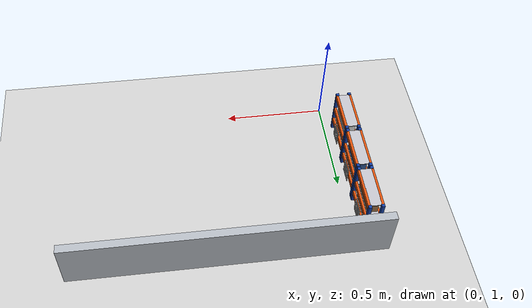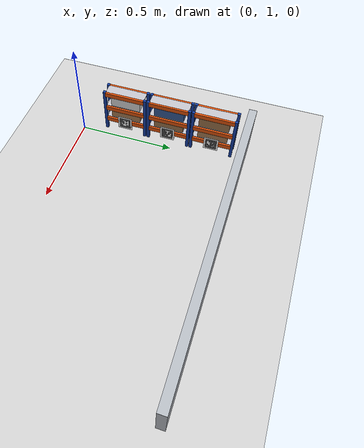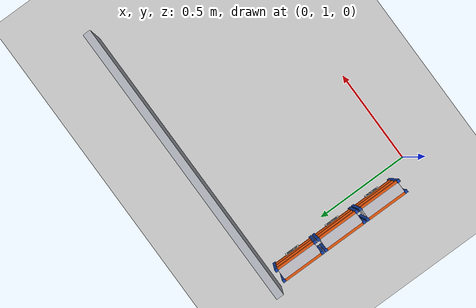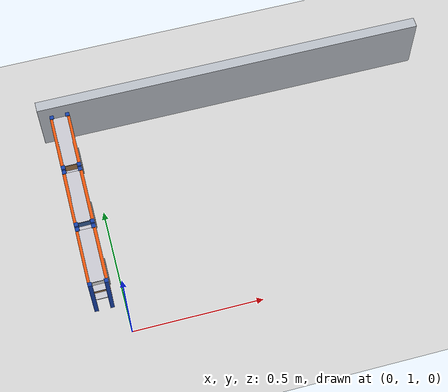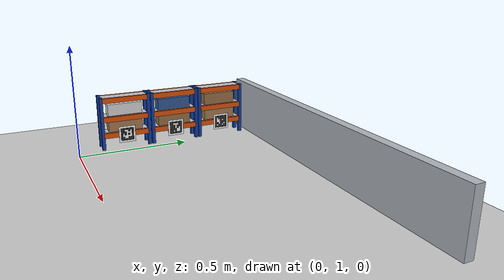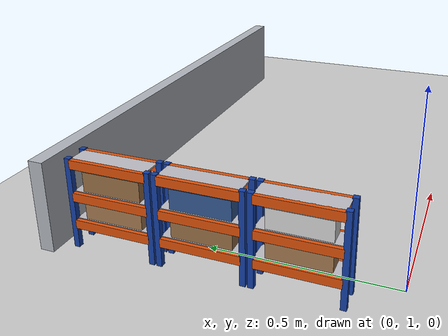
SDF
<sdf version="1.8">
 <world name="default">
  <model name="ground_plane">
   <static>true</static>
   <link name="link">
    <collision name="collision">
     <geometry><plane><normal>0 0 1</normal><size>10 10</size></plane></geometry>
    </collision>
    <visual name="visual">
     <geometry><plane><normal>0 0 1</normal><size>10 10</size></plane></geometry>
     <material><ambient>0.8 0.8 0.8 1</ambient><diffuse>0.8 0.8 0.8 1</diffuse></material>
    </visual>
   </link>
  </model>
  <model name="wall_north">
   <static>true</static>
   <pose>0.6000 1.8800 0.1250 0 0 0</pose>
   <link name="link">
    <collision name="collision"><geometry><box><size>1.5200 0.0400 0.2500</size></box></geometry></collision>
    <visual name="visual">
     <geometry><box><size>1.5200 0.0400 0.2500</size></box></geometry>
     <material>
      <ambient>0.7 0.72 0.75 1</ambient>
      <diffuse>0.7 0.72 0.75 1</diffuse>
      <specular>0.1 0.1 0.1 1</specular>
     </material>
    </visual>
   </link>
  </model>
  <model name="shelf1_costco_rack_left">
   <static>true</static>
   <pose>-0.0800 1.2300 0.1250 0 0 0</pose>
   <link name="link">
    <collision name="collision"><geometry><box><size>0.0700 0.2300 0.2500</size></box></geometry></collision>
    <visual name="post_FL">
     <pose>0.0300 -0.110 0 0 0 0</pose>
     <geometry><box><size>0.015 0.015 0.25</size></box></geometry>
     <material>
      <ambient>0.05 0.15 0.45 1</ambient>
      <diffuse>0.08 0.25 0.65 1</diffuse>
      <specular>0.3 0.3 0.4 1</specular>
     </material>
    </visual>
    <visual name="post_FR">
     <pose>0.0300 0.110 0 0 0 0</pose>
     <geometry><box><size>0.015 0.015 0.25</size></box></geometry>
     <material>
      <ambient>0.05 0.15 0.45 1</ambient>
      <diffuse>0.08 0.25 0.65 1</diffuse>
      <specular>0.3 0.3 0.4 1</specular>
     </material>
    </visual>
    <visual name="post_RL">
     <pose>-0.0300 -0.110 0 0 0 0</pose>
     <geometry><box><size>0.015 0.015 0.25</size></box></geometry>
     <material>
      <ambient>0.05 0.15 0.45 1</ambient>
      <diffuse>0.08 0.25 0.65 1</diffuse>
      <specular>0.3 0.3 0.4 1</specular>
     </material>
    </visual>
    <visual name="post_RR">
     <pose>-0.0300 0.110 0 0 0 0</pose>
     <geometry><box><size>0.015 0.015 0.25</size></box></geometry>
     <material>
      <ambient>0.05 0.15 0.45 1</ambient>
      <diffuse>0.08 0.25 0.65 1</diffuse>
      <specular>0.3 0.3 0.4 1</specular>
     </material>
    </visual>
    <visual name="t1_beam_F">
     <pose>0.0320 0 -0.057 0 0 0</pose>
     <geometry><box><size>0.012 0.21 0.024</size></box></geometry>
     <material>
      <ambient>0.6 0.2 0.02 1</ambient>
      <diffuse>0.88 0.32 0.04 1</diffuse>
      <specular>0.4 0.2 0.1 1</specular>
     </material>
    </visual>
    <visual name="t1_beam_R">
     <pose>-0.0320 0 -0.057 0 0 0</pose>
     <geometry><box><size>0.012 0.21 0.024</size></box></geometry>
     <material><ambient>0.6 0.2 0.02 1</ambient><diffuse>0.88 0.32 0.04 1</diffuse></material>
    </visual>
    <visual name="t1_deck">
     <pose>0 0 -0.045 0 0 0</pose>
     <geometry><box><size>0.055 0.21 0.004</size></box></geometry>
     <material><ambient>0.65 0.65 0.68 1</ambient><diffuse>0.75 0.75 0.78 1</diffuse></material>
    </visual>
    <visual name="t1_box">
     <pose>0 0 -0.016 0 0 0</pose>
     <geometry><box><size>0.048 0.16 0.054</size></box></geometry>
     <material><ambient>0.55 0.40 0.25 1</ambient><diffuse>0.65 0.48 0.32 1</diffuse></material>
    </visual>
    <visual name="t2_beam_F">
     <pose>0.0320 0 0.020 0 0 0</pose>
     <geometry><box><size>0.012 0.21 0.024</size></box></geometry>
     <material>
      <ambient>0.6 0.2 0.02 1</ambient>
      <diffuse>0.88 0.32 0.04 1</diffuse>
      <specular>0.4 0.2 0.1 1</specular>
     </material>
    </visual>
    <visual name="t2_beam_R">
     <pose>-0.0320 0 0.020 0 0 0</pose>
     <geometry><box><size>0.012 0.21 0.024</size></box></geometry>
     <material><ambient>0.6 0.2 0.02 1</ambient><diffuse>0.88 0.32 0.04 1</diffuse></material>
    </visual>
    <visual name="t2_deck">
     <pose>0 0 0.032 0 0 0</pose>
     <geometry><box><size>0.055 0.21 0.004</size></box></geometry>
     <material><ambient>0.65 0.65 0.68 1</ambient><diffuse>0.75 0.75 0.78 1</diffuse></material>
    </visual>
    <visual name="t2_box">
     <pose>0 0 0.061 0 0 0</pose>
     <geometry><box><size>0.048 0.16 0.054</size></box></geometry>
     <material><ambient>0.75 0.75 0.75 1</ambient><diffuse>0.85 0.85 0.85 1</diffuse></material>
    </visual>
    <visual name="t3_beam_F">
     <pose>0.0320 0 0.110 0 0 0</pose>
     <geometry><box><size>0.012 0.21 0.024</size></box></geometry>
     <material>
      <ambient>0.6 0.2 0.02 1</ambient>
      <diffuse>0.88 0.32 0.04 1</diffuse>
      <specular>0.4 0.2 0.1 1</specular>
     </material>
    </visual>
    <visual name="t3_beam_R">
     <pose>-0.0320 0 0.110 0 0 0</pose>
     <geometry><box><size>0.012 0.21 0.024</size></box></geometry>
     <material><ambient>0.6 0.2 0.02 1</ambient><diffuse>0.88 0.32 0.04 1</diffuse></material>
    </visual>
    <visual name="t3_deck">
     <pose>0 0 0.120 0 0 0</pose>
     <geometry><box><size>0.055 0.21 0.004</size></box></geometry>
     <material><ambient>0.65 0.65 0.68 1</ambient><diffuse>0.75 0.75 0.78 1</diffuse></material>
    </visual>
   </link>
  </model>
  <model name="shelf1_costco_rack_center">
   <static>true</static>
   <pose>-0.0800 1.4700 0.1250 0 0 0</pose>
   <link name="link">
    <collision name="collision"><geometry><box><size>0.0700 0.2300 0.2500</size></box></geometry></collision>
    <visual name="post_FL">
     <pose>0.0300 -0.110 0 0 0 0</pose>
     <geometry><box><size>0.015 0.015 0.25</size></box></geometry>
     <material>
      <ambient>0.05 0.15 0.45 1</ambient>
      <diffuse>0.08 0.25 0.65 1</diffuse>
      <specular>0.3 0.3 0.4 1</specular>
     </material>
    </visual>
    <visual name="post_FR">
     <pose>0.0300 0.110 0 0 0 0</pose>
     <geometry><box><size>0.015 0.015 0.25</size></box></geometry>
     <material>
      <ambient>0.05 0.15 0.45 1</ambient>
      <diffuse>0.08 0.25 0.65 1</diffuse>
      <specular>0.3 0.3 0.4 1</specular>
     </material>
    </visual>
    <visual name="post_RL">
     <pose>-0.0300 -0.110 0 0 0 0</pose>
     <geometry><box><size>0.015 0.015 0.25</size></box></geometry>
     <material>
      <ambient>0.05 0.15 0.45 1</ambient>
      <diffuse>0.08 0.25 0.65 1</diffuse>
      <specular>0.3 0.3 0.4 1</specular>
     </material>
    </visual>
    <visual name="post_RR">
     <pose>-0.0300 0.110 0 0 0 0</pose>
     <geometry><box><size>0.015 0.015 0.25</size></box></geometry>
     <material>
      <ambient>0.05 0.15 0.45 1</ambient>
      <diffuse>0.08 0.25 0.65 1</diffuse>
      <specular>0.3 0.3 0.4 1</specular>
     </material>
    </visual>
    <visual name="t1_beam_F">
     <pose>0.0320 0 -0.057 0 0 0</pose>
     <geometry><box><size>0.012 0.21 0.024</size></box></geometry>
     <material>
      <ambient>0.6 0.2 0.02 1</ambient>
      <diffuse>0.88 0.32 0.04 1</diffuse>
      <specular>0.4 0.2 0.1 1</specular>
     </material>
    </visual>
    <visual name="t1_beam_R">
     <pose>-0.0320 0 -0.057 0 0 0</pose>
     <geometry><box><size>0.012 0.21 0.024</size></box></geometry>
     <material><ambient>0.6 0.2 0.02 1</ambient><diffuse>0.88 0.32 0.04 1</diffuse></material>
    </visual>
    <visual name="t1_deck">
     <pose>0 0 -0.045 0 0 0</pose>
     <geometry><box><size>0.055 0.21 0.004</size></box></geometry>
     <material><ambient>0.65 0.65 0.68 1</ambient><diffuse>0.75 0.75 0.78 1</diffuse></material>
    </visual>
    <visual name="t1_box">
     <pose>0 0 -0.016 0 0 0</pose>
     <geometry><box><size>0.048 0.16 0.054</size></box></geometry>
     <material><ambient>0.50 0.36 0.22 1</ambient><diffuse>0.60 0.44 0.28 1</diffuse></material>
    </visual>
    <visual name="t2_beam_F">
     <pose>0.0320 0 0.020 0 0 0</pose>
     <geometry><box><size>0.012 0.21 0.024</size></box></geometry>
     <material>
      <ambient>0.6 0.2 0.02 1</ambient>
      <diffuse>0.88 0.32 0.04 1</diffuse>
      <specular>0.4 0.2 0.1 1</specular>
     </material>
    </visual>
    <visual name="t2_beam_R">
     <pose>-0.0320 0 0.020 0 0 0</pose>
     <geometry><box><size>0.012 0.21 0.024</size></box></geometry>
     <material><ambient>0.6 0.2 0.02 1</ambient><diffuse>0.88 0.32 0.04 1</diffuse></material>
    </visual>
    <visual name="t2_deck">
     <pose>0 0 0.032 0 0 0</pose>
     <geometry><box><size>0.055 0.21 0.004</size></box></geometry>
     <material><ambient>0.65 0.65 0.68 1</ambient><diffuse>0.75 0.75 0.78 1</diffuse></material>
    </visual>
    <visual name="t2_box">
     <pose>0 0 0.061 0 0 0</pose>
     <geometry><box><size>0.048 0.16 0.054</size></box></geometry>
     <material><ambient>0.15 0.28 0.48 1</ambient><diffuse>0.20 0.35 0.58 1</diffuse></material>
    </visual>
    <visual name="t3_beam_F">
     <pose>0.0320 0 0.110 0 0 0</pose>
     <geometry><box><size>0.012 0.21 0.024</size></box></geometry>
     <material>
      <ambient>0.6 0.2 0.02 1</ambient>
      <diffuse>0.88 0.32 0.04 1</diffuse>
      <specular>0.4 0.2 0.1 1</specular>
     </material>
    </visual>
    <visual name="t3_beam_R">
     <pose>-0.0320 0 0.110 0 0 0</pose>
     <geometry><box><size>0.012 0.21 0.024</size></box></geometry>
     <material><ambient>0.6 0.2 0.02 1</ambient><diffuse>0.88 0.32 0.04 1</diffuse></material>
    </visual>
    <visual name="t3_deck">
     <pose>0 0 0.120 0 0 0</pose>
     <geometry><box><size>0.055 0.21 0.004</size></box></geometry>
     <material><ambient>0.65 0.65 0.68 1</ambient><diffuse>0.75 0.75 0.78 1</diffuse></material>
    </visual>
   </link>
  </model>
  <model name="shelf1_costco_rack_right">
   <static>true</static>
   <pose>-0.0800 1.7100 0.1250 0 0 0</pose>
   <link name="link">
    <collision name="collision"><geometry><box><size>0.0700 0.2300 0.2500</size></box></geometry></collision>
    <visual name="post_FL">
     <pose>0.0300 -0.110 0 0 0 0</pose>
     <geometry><box><size>0.015 0.015 0.25</size></box></geometry>
     <material>
      <ambient>0.05 0.15 0.45 1</ambient>
      <diffuse>0.08 0.25 0.65 1</diffuse>
      <specular>0.3 0.3 0.4 1</specular>
     </material>
    </visual>
    <visual name="post_FR">
     <pose>0.0300 0.110 0 0 0 0</pose>
     <geometry><box><size>0.015 0.015 0.25</size></box></geometry>
     <material>
      <ambient>0.05 0.15 0.45 1</ambient>
      <diffuse>0.08 0.25 0.65 1</diffuse>
      <specular>0.3 0.3 0.4 1</specular>
     </material>
    </visual>
    <visual name="post_RL">
     <pose>-0.0300 -0.110 0 0 0 0</pose>
     <geometry><box><size>0.015 0.015 0.25</size></box></geometry>
     <material>
      <ambient>0.05 0.15 0.45 1</ambient>
      <diffuse>0.08 0.25 0.65 1</diffuse>
      <specular>0.3 0.3 0.4 1</specular>
     </material>
    </visual>
    <visual name="post_RR">
     <pose>-0.0300 0.110 0 0 0 0</pose>
     <geometry><box><size>0.015 0.015 0.25</size></box></geometry>
     <material>
      <ambient>0.05 0.15 0.45 1</ambient>
      <diffuse>0.08 0.25 0.65 1</diffuse>
      <specular>0.3 0.3 0.4 1</specular>
     </material>
    </visual>
    <visual name="t1_beam_F">
     <pose>0.0320 0 -0.057 0 0 0</pose>
     <geometry><box><size>0.012 0.21 0.024</size></box></geometry>
     <material>
      <ambient>0.6 0.2 0.02 1</ambient>
      <diffuse>0.88 0.32 0.04 1</diffuse>
      <specular>0.4 0.2 0.1 1</specular>
     </material>
    </visual>
    <visual name="t1_beam_R">
     <pose>-0.0320 0 -0.057 0 0 0</pose>
     <geometry><box><size>0.012 0.21 0.024</size></box></geometry>
     <material><ambient>0.6 0.2 0.02 1</ambient><diffuse>0.88 0.32 0.04 1</diffuse></material>
    </visual>
    <visual name="t1_deck">
     <pose>0 0 -0.045 0 0 0</pose>
     <geometry><box><size>0.055 0.21 0.004</size></box></geometry>
     <material><ambient>0.65 0.65 0.68 1</ambient><diffuse>0.75 0.75 0.78 1</diffuse></material>
    </visual>
    <visual name="t1_box">
     <pose>0 0 -0.016 0 0 0</pose>
     <geometry><box><size>0.048 0.16 0.054</size></box></geometry>
     <material><ambient>0.55 0.40 0.25 1</ambient><diffuse>0.65 0.48 0.32 1</diffuse></material>
    </visual>
    <visual name="t2_beam_F">
     <pose>0.0320 0 0.020 0 0 0</pose>
     <geometry><box><size>0.012 0.21 0.024</size></box></geometry>
     <material>
      <ambient>0.6 0.2 0.02 1</ambient>
      <diffuse>0.88 0.32 0.04 1</diffuse>
      <specular>0.4 0.2 0.1 1</specular>
     </material>
    </visual>
    <visual name="t2_beam_R">
     <pose>-0.0320 0 0.020 0 0 0</pose>
     <geometry><box><size>0.012 0.21 0.024</size></box></geometry>
     <material><ambient>0.6 0.2 0.02 1</ambient><diffuse>0.88 0.32 0.04 1</diffuse></material>
    </visual>
    <visual name="t2_deck">
     <pose>0 0 0.032 0 0 0</pose>
     <geometry><box><size>0.055 0.21 0.004</size></box></geometry>
     <material><ambient>0.65 0.65 0.68 1</ambient><diffuse>0.75 0.75 0.78 1</diffuse></material>
    </visual>
    <visual name="t2_box">
     <pose>0 0 0.061 0 0 0</pose>
     <geometry><box><size>0.048 0.16 0.054</size></box></geometry>
     <material><ambient>0.50 0.36 0.22 1</ambient><diffuse>0.60 0.44 0.28 1</diffuse></material>
    </visual>
    <visual name="t3_beam_F">
     <pose>0.0320 0 0.110 0 0 0</pose>
     <geometry><box><size>0.012 0.21 0.024</size></box></geometry>
     <material>
      <ambient>0.6 0.2 0.02 1</ambient>
      <diffuse>0.88 0.32 0.04 1</diffuse>
      <specular>0.4 0.2 0.1 1</specular>
     </material>
    </visual>
    <visual name="t3_beam_R">
     <pose>-0.0320 0 0.110 0 0 0</pose>
     <geometry><box><size>0.012 0.21 0.024</size></box></geometry>
     <material><ambient>0.6 0.2 0.02 1</ambient><diffuse>0.88 0.32 0.04 1</diffuse></material>
    </visual>
    <visual name="t3_deck">
     <pose>0 0 0.120 0 0 0</pose>
     <geometry><box><size>0.055 0.21 0.004</size></box></geometry>
     <material><ambient>0.65 0.65 0.68 1</ambient><diffuse>0.75 0.75 0.78 1</diffuse></material>
    </visual>
   </link>
  </model>
  <model name="aruco_5x5_id6_shelf1_left">
   <static>true</static>
   <pose>-0.0390 1.2300 0.0680 0.0000 0.0000 3.1416</pose>
   <link name="link">
    <visual name="white_bg">
     <geometry><box><size>0.002 0.07714 0.07714</size></box></geometry>
     <material>
      <ambient>1 1 1 1</ambient>
      <diffuse>1 1 1 1</diffuse>
      <specular>0 0 0 1</specular>
      <emissive>0.92 0.92 0.92 1</emissive>
     </material>
    </visual>
    <visual name="cell_0_0">
     <pose>-0.0008 0.02571 0.02571 0 0 0</pose>
     <geometry><box><size>0.001 0.00866 0.00866</size></box></geometry>
     <material>
      <ambient>0 0 0 1</ambient>
      <diffuse>0 0 0 1</diffuse>
      <specular>0 0 0 1</specular>
      <emissive>0 0 0 1</emissive>
     </material>
    </visual>
    <visual name="cell_0_1">
     <pose>-0.0008 0.01714 0.02571 0 0 0</pose>
     <geometry><box><size>0.001 0.00866 0.00866</size></box></geometry>
     <material>
      <ambient>0 0 0 1</ambient>
      <diffuse>0 0 0 1</diffuse>
      <specular>0 0 0 1</specular>
      <emissive>0 0 0 1</emissive>
     </material>
    </visual>
    <visual name="cell_0_2">
     <pose>-0.0008 0.00857 0.02571 0 0 0</pose>
     <geometry><box><size>0.001 0.00866 0.00866</size></box></geometry>
     <material>
      <ambient>0 0 0 1</ambient>
      <diffuse>0 0 0 1</diffuse>
      <specular>0 0 0 1</specular>
      <emissive>0 0 0 1</emissive>
     </material>
    </visual>
    <visual name="cell_0_3">
     <pose>-0.0008 0.00000 0.02571 0 0 0</pose>
     <geometry><box><size>0.001 0.00866 0.00866</size></box></geometry>
     <material>
      <ambient>0 0 0 1</ambient>
      <diffuse>0 0 0 1</diffuse>
      <specular>0 0 0 1</specular>
      <emissive>0 0 0 1</emissive>
     </material>
    </visual>
    <visual name="cell_0_4">
     <pose>-0.0008 -0.00857 0.02571 0 0 0</pose>
     <geometry><box><size>0.001 0.00866 0.00866</size></box></geometry>
     <material>
      <ambient>0 0 0 1</ambient>
      <diffuse>0 0 0 1</diffuse>
      <specular>0 0 0 1</specular>
      <emissive>0 0 0 1</emissive>
     </material>
    </visual>
    <visual name="cell_0_5">
     <pose>-0.0008 -0.01714 0.02571 0 0 0</pose>
     <geometry><box><size>0.001 0.00866 0.00866</size></box></geometry>
     <material>
      <ambient>0 0 0 1</ambient>
      <diffuse>0 0 0 1</diffuse>
      <specular>0 0 0 1</specular>
      <emissive>0 0 0 1</emissive>
     </material>
    </visual>
    <visual name="cell_0_6">
     <pose>-0.0008 -0.02571 0.02571 0 0 0</pose>
     <geometry><box><size>0.001 0.00866 0.00866</size></box></geometry>
     <material>
      <ambient>0 0 0 1</ambient>
      <diffuse>0 0 0 1</diffuse>
      <specular>0 0 0 1</specular>
      <emissive>0 0 0 1</emissive>
     </material>
    </visual>
    <visual name="cell_1_0">
     <pose>-0.0008 0.02571 0.01714 0 0 0</pose>
     <geometry><box><size>0.001 0.00866 0.00866</size></box></geometry>
     <material>
      <ambient>0 0 0 1</ambient>
      <diffuse>0 0 0 1</diffuse>
      <specular>0 0 0 1</specular>
      <emissive>0 0 0 1</emissive>
     </material>
    </visual>
    <visual name="cell_1_1">
     <pose>-0.0008 0.01714 0.01714 0 0 0</pose>
     <geometry><box><size>0.001 0.00866 0.00866</size></box></geometry>
     <material>
      <ambient>0 0 0 1</ambient>
      <diffuse>0 0 0 1</diffuse>
      <specular>0 0 0 1</specular>
      <emissive>0 0 0 1</emissive>
     </material>
    </visual>
    <visual name="cell_1_4">
     <pose>-0.0008 -0.00857 0.01714 0 0 0</pose>
     <geometry><box><size>0.001 0.00866 0.00866</size></box></geometry>
     <material>
      <ambient>0 0 0 1</ambient>
      <diffuse>0 0 0 1</diffuse>
      <specular>0 0 0 1</specular>
      <emissive>0 0 0 1</emissive>
     </material>
    </visual>
    <visual name="cell_1_6">
     <pose>-0.0008 -0.02571 0.01714 0 0 0</pose>
     <geometry><box><size>0.001 0.00866 0.00866</size></box></geometry>
     <material>
      <ambient>0 0 0 1</ambient>
      <diffuse>0 0 0 1</diffuse>
      <specular>0 0 0 1</specular>
      <emissive>0 0 0 1</emissive>
     </material>
    </visual>
    <visual name="cell_2_0">
     <pose>-0.0008 0.02571 0.00857 0 0 0</pose>
     <geometry><box><size>0.001 0.00866 0.00866</size></box></geometry>
     <material>
      <ambient>0 0 0 1</ambient>
      <diffuse>0 0 0 1</diffuse>
      <specular>0 0 0 1</specular>
      <emissive>0 0 0 1</emissive>
     </material>
    </visual>
    <visual name="cell_2_1">
     <pose>-0.0008 0.01714 0.00857 0 0 0</pose>
     <geometry><box><size>0.001 0.00866 0.00866</size></box></geometry>
     <material>
      <ambient>0 0 0 1</ambient>
      <diffuse>0 0 0 1</diffuse>
      <specular>0 0 0 1</specular>
      <emissive>0 0 0 1</emissive>
     </material>
    </visual>
    <visual name="cell_2_2">
     <pose>-0.0008 0.00857 0.00857 0 0 0</pose>
     <geometry><box><size>0.001 0.00866 0.00866</size></box></geometry>
     <material>
      <ambient>0 0 0 1</ambient>
      <diffuse>0 0 0 1</diffuse>
      <specular>0 0 0 1</specular>
      <emissive>0 0 0 1</emissive>
     </material>
    </visual>
    <visual name="cell_2_6">
     <pose>-0.0008 -0.02571 0.00857 0 0 0</pose>
     <geometry><box><size>0.001 0.00866 0.00866</size></box></geometry>
     <material>
      <ambient>0 0 0 1</ambient>
      <diffuse>0 0 0 1</diffuse>
      <specular>0 0 0 1</specular>
      <emissive>0 0 0 1</emissive>
     </material>
    </visual>
    <visual name="cell_3_0">
     <pose>-0.0008 0.02571 0.00000 0 0 0</pose>
     <geometry><box><size>0.001 0.00866 0.00866</size></box></geometry>
     <material>
      <ambient>0 0 0 1</ambient>
      <diffuse>0 0 0 1</diffuse>
      <specular>0 0 0 1</specular>
      <emissive>0 0 0 1</emissive>
     </material>
    </visual>
    <visual name="cell_3_2">
     <pose>-0.0008 0.00857 0.00000 0 0 0</pose>
     <geometry><box><size>0.001 0.00866 0.00866</size></box></geometry>
     <material>
      <ambient>0 0 0 1</ambient>
      <diffuse>0 0 0 1</diffuse>
      <specular>0 0 0 1</specular>
      <emissive>0 0 0 1</emissive>
     </material>
    </visual>
    <visual name="cell_3_4">
     <pose>-0.0008 -0.00857 0.00000 0 0 0</pose>
     <geometry><box><size>0.001 0.00866 0.00866</size></box></geometry>
     <material>
      <ambient>0 0 0 1</ambient>
      <diffuse>0 0 0 1</diffuse>
      <specular>0 0 0 1</specular>
      <emissive>0 0 0 1</emissive>
     </material>
    </visual>
    <visual name="cell_3_6">
     <pose>-0.0008 -0.02571 0.00000 0 0 0</pose>
     <geometry><box><size>0.001 0.00866 0.00866</size></box></geometry>
     <material>
      <ambient>0 0 0 1</ambient>
      <diffuse>0 0 0 1</diffuse>
      <specular>0 0 0 1</specular>
      <emissive>0 0 0 1</emissive>
     </material>
    </visual>
    <visual name="cell_4_0">
     <pose>-0.0008 0.02571 -0.00857 0 0 0</pose>
     <geometry><box><size>0.001 0.00866 0.00866</size></box></geometry>
     <material>
      <ambient>0 0 0 1</ambient>
      <diffuse>0 0 0 1</diffuse>
      <specular>0 0 0 1</specular>
      <emissive>0 0 0 1</emissive>
     </material>
    </visual>
    <visual name="cell_4_6">
     <pose>-0.0008 -0.02571 -0.00857 0 0 0</pose>
     <geometry><box><size>0.001 0.00866 0.00866</size></box></geometry>
     <material>
      <ambient>0 0 0 1</ambient>
      <diffuse>0 0 0 1</diffuse>
      <specular>0 0 0 1</specular>
      <emissive>0 0 0 1</emissive>
     </material>
    </visual>
    <visual name="cell_5_0">
     <pose>-0.0008 0.02571 -0.01714 0 0 0</pose>
     <geometry><box><size>0.001 0.00866 0.00866</size></box></geometry>
     <material>
      <ambient>0 0 0 1</ambient>
      <diffuse>0 0 0 1</diffuse>
      <specular>0 0 0 1</specular>
      <emissive>0 0 0 1</emissive>
     </material>
    </visual>
    <visual name="cell_5_1">
     <pose>-0.0008 0.01714 -0.01714 0 0 0</pose>
     <geometry><box><size>0.001 0.00866 0.00866</size></box></geometry>
     <material>
      <ambient>0 0 0 1</ambient>
      <diffuse>0 0 0 1</diffuse>
      <specular>0 0 0 1</specular>
      <emissive>0 0 0 1</emissive>
     </material>
    </visual>
    <visual name="cell_5_4">
     <pose>-0.0008 -0.00857 -0.01714 0 0 0</pose>
     <geometry><box><size>0.001 0.00866 0.00866</size></box></geometry>
     <material>
      <ambient>0 0 0 1</ambient>
      <diffuse>0 0 0 1</diffuse>
      <specular>0 0 0 1</specular>
      <emissive>0 0 0 1</emissive>
     </material>
    </visual>
    <visual name="cell_5_5">
     <pose>-0.0008 -0.01714 -0.01714 0 0 0</pose>
     <geometry><box><size>0.001 0.00866 0.00866</size></box></geometry>
     <material>
      <ambient>0 0 0 1</ambient>
      <diffuse>0 0 0 1</diffuse>
      <specular>0 0 0 1</specular>
      <emissive>0 0 0 1</emissive>
     </material>
    </visual>
    <visual name="cell_5_6">
     <pose>-0.0008 -0.02571 -0.01714 0 0 0</pose>
     <geometry><box><size>0.001 0.00866 0.00866</size></box></geometry>
     <material>
      <ambient>0 0 0 1</ambient>
      <diffuse>0 0 0 1</diffuse>
      <specular>0 0 0 1</specular>
      <emissive>0 0 0 1</emissive>
     </material>
    </visual>
    <visual name="cell_6_0">
     <pose>-0.0008 0.02571 -0.02571 0 0 0</pose>
     <geometry><box><size>0.001 0.00866 0.00866</size></box></geometry>
     <material>
      <ambient>0 0 0 1</ambient>
      <diffuse>0 0 0 1</diffuse>
      <specular>0 0 0 1</specular>
      <emissive>0 0 0 1</emissive>
     </material>
    </visual>
    <visual name="cell_6_1">
     <pose>-0.0008 0.01714 -0.02571 0 0 0</pose>
     <geometry><box><size>0.001 0.00866 0.00866</size></box></geometry>
     <material>
      <ambient>0 0 0 1</ambient>
      <diffuse>0 0 0 1</diffuse>
      <specular>0 0 0 1</specular>
      <emissive>0 0 0 1</emissive>
     </material>
    </visual>
    <visual name="cell_6_2">
     <pose>-0.0008 0.00857 -0.02571 0 0 0</pose>
     <geometry><box><size>0.001 0.00866 0.00866</size></box></geometry>
     <material>
      <ambient>0 0 0 1</ambient>
      <diffuse>0 0 0 1</diffuse>
      <specular>0 0 0 1</specular>
      <emissive>0 0 0 1</emissive>
     </material>
    </visual>
    <visual name="cell_6_3">
     <pose>-0.0008 0.00000 -0.02571 0 0 0</pose>
     <geometry><box><size>0.001 0.00866 0.00866</size></box></geometry>
     <material>
      <ambient>0 0 0 1</ambient>
      <diffuse>0 0 0 1</diffuse>
      <specular>0 0 0 1</specular>
      <emissive>0 0 0 1</emissive>
     </material>
    </visual>
    <visual name="cell_6_4">
     <pose>-0.0008 -0.00857 -0.02571 0 0 0</pose>
     <geometry><box><size>0.001 0.00866 0.00866</size></box></geometry>
     <material>
      <ambient>0 0 0 1</ambient>
      <diffuse>0 0 0 1</diffuse>
      <specular>0 0 0 1</specular>
      <emissive>0 0 0 1</emissive>
     </material>
    </visual>
    <visual name="cell_6_5">
     <pose>-0.0008 -0.01714 -0.02571 0 0 0</pose>
     <geometry><box><size>0.001 0.00866 0.00866</size></box></geometry>
     <material>
      <ambient>0 0 0 1</ambient>
      <diffuse>0 0 0 1</diffuse>
      <specular>0 0 0 1</specular>
      <emissive>0 0 0 1</emissive>
     </material>
    </visual>
    <visual name="cell_6_6">
     <pose>-0.0008 -0.02571 -0.02571 0 0 0</pose>
     <geometry><box><size>0.001 0.00866 0.00866</size></box></geometry>
     <material>
      <ambient>0 0 0 1</ambient>
      <diffuse>0 0 0 1</diffuse>
      <specular>0 0 0 1</specular>
      <emissive>0 0 0 1</emissive>
     </material>
    </visual>
   </link>
  </model>
  <model name="aruco_5x5_id7">
   <static>true</static>
   <pose>-0.0390 1.4700 0.0680 0.0000 0.0000 3.1416</pose>
   <link name="link">
    <visual name="white_bg">
     <geometry><box><size>0.002 0.07714 0.07714</size></box></geometry>
     <material>
      <ambient>1 1 1 1</ambient>
      <diffuse>1 1 1 1</diffuse>
      <specular>0 0 0 1</specular>
      <emissive>0.92 0.92 0.92 1</emissive>
     </material>
    </visual>
    <visual name="cell_0_0">
     <pose>-0.0008 0.02571 0.02571 0 0 0</pose>
     <geometry><box><size>0.001 0.00866 0.00866</size></box></geometry>
     <material>
      <ambient>0 0 0 1</ambient>
      <diffuse>0 0 0 1</diffuse>
      <specular>0 0 0 1</specular>
      <emissive>0 0 0 1</emissive>
     </material>
    </visual>
    <visual name="cell_0_1">
     <pose>-0.0008 0.01714 0.02571 0 0 0</pose>
     <geometry><box><size>0.001 0.00866 0.00866</size></box></geometry>
     <material>
      <ambient>0 0 0 1</ambient>
      <diffuse>0 0 0 1</diffuse>
      <specular>0 0 0 1</specular>
      <emissive>0 0 0 1</emissive>
     </material>
    </visual>
    <visual name="cell_0_2">
     <pose>-0.0008 0.00857 0.02571 0 0 0</pose>
     <geometry><box><size>0.001 0.00866 0.00866</size></box></geometry>
     <material>
      <ambient>0 0 0 1</ambient>
      <diffuse>0 0 0 1</diffuse>
      <specular>0 0 0 1</specular>
      <emissive>0 0 0 1</emissive>
     </material>
    </visual>
    <visual name="cell_0_3">
     <pose>-0.0008 0.00000 0.02571 0 0 0</pose>
     <geometry><box><size>0.001 0.00866 0.00866</size></box></geometry>
     <material>
      <ambient>0 0 0 1</ambient>
      <diffuse>0 0 0 1</diffuse>
      <specular>0 0 0 1</specular>
      <emissive>0 0 0 1</emissive>
     </material>
    </visual>
    <visual name="cell_0_4">
     <pose>-0.0008 -0.00857 0.02571 0 0 0</pose>
     <geometry><box><size>0.001 0.00866 0.00866</size></box></geometry>
     <material>
      <ambient>0 0 0 1</ambient>
      <diffuse>0 0 0 1</diffuse>
      <specular>0 0 0 1</specular>
      <emissive>0 0 0 1</emissive>
     </material>
    </visual>
    <visual name="cell_0_5">
     <pose>-0.0008 -0.01714 0.02571 0 0 0</pose>
     <geometry><box><size>0.001 0.00866 0.00866</size></box></geometry>
     <material>
      <ambient>0 0 0 1</ambient>
      <diffuse>0 0 0 1</diffuse>
      <specular>0 0 0 1</specular>
      <emissive>0 0 0 1</emissive>
     </material>
    </visual>
    <visual name="cell_0_6">
     <pose>-0.0008 -0.02571 0.02571 0 0 0</pose>
     <geometry><box><size>0.001 0.00866 0.00866</size></box></geometry>
     <material>
      <ambient>0 0 0 1</ambient>
      <diffuse>0 0 0 1</diffuse>
      <specular>0 0 0 1</specular>
      <emissive>0 0 0 1</emissive>
     </material>
    </visual>
    <visual name="cell_1_0">
     <pose>-0.0008 0.02571 0.01714 0 0 0</pose>
     <geometry><box><size>0.001 0.00866 0.00866</size></box></geometry>
     <material>
      <ambient>0 0 0 1</ambient>
      <diffuse>0 0 0 1</diffuse>
      <specular>0 0 0 1</specular>
      <emissive>0 0 0 1</emissive>
     </material>
    </visual>
    <visual name="cell_1_1">
     <pose>-0.0008 0.01714 0.01714 0 0 0</pose>
     <geometry><box><size>0.001 0.00866 0.00866</size></box></geometry>
     <material>
      <ambient>0 0 0 1</ambient>
      <diffuse>0 0 0 1</diffuse>
      <specular>0 0 0 1</specular>
      <emissive>0 0 0 1</emissive>
     </material>
    </visual>
    <visual name="cell_1_5">
     <pose>-0.0008 -0.01714 0.01714 0 0 0</pose>
     <geometry><box><size>0.001 0.00866 0.00866</size></box></geometry>
     <material>
      <ambient>0 0 0 1</ambient>
      <diffuse>0 0 0 1</diffuse>
      <specular>0 0 0 1</specular>
      <emissive>0 0 0 1</emissive>
     </material>
    </visual>
    <visual name="cell_1_6">
     <pose>-0.0008 -0.02571 0.01714 0 0 0</pose>
     <geometry><box><size>0.001 0.00866 0.00866</size></box></geometry>
     <material>
      <ambient>0 0 0 1</ambient>
      <diffuse>0 0 0 1</diffuse>
      <specular>0 0 0 1</specular>
      <emissive>0 0 0 1</emissive>
     </material>
    </visual>
    <visual name="cell_2_0">
     <pose>-0.0008 0.02571 0.00857 0 0 0</pose>
     <geometry><box><size>0.001 0.00866 0.00866</size></box></geometry>
     <material>
      <ambient>0 0 0 1</ambient>
      <diffuse>0 0 0 1</diffuse>
      <specular>0 0 0 1</specular>
      <emissive>0 0 0 1</emissive>
     </material>
    </visual>
    <visual name="cell_2_1">
     <pose>-0.0008 0.01714 0.00857 0 0 0</pose>
     <geometry><box><size>0.001 0.00866 0.00866</size></box></geometry>
     <material>
      <ambient>0 0 0 1</ambient>
      <diffuse>0 0 0 1</diffuse>
      <specular>0 0 0 1</specular>
      <emissive>0 0 0 1</emissive>
     </material>
    </visual>
    <visual name="cell_2_2">
     <pose>-0.0008 0.00857 0.00857 0 0 0</pose>
     <geometry><box><size>0.001 0.00866 0.00866</size></box></geometry>
     <material>
      <ambient>0 0 0 1</ambient>
      <diffuse>0 0 0 1</diffuse>
      <specular>0 0 0 1</specular>
      <emissive>0 0 0 1</emissive>
     </material>
    </visual>
    <visual name="cell_2_4">
     <pose>-0.0008 -0.00857 0.00857 0 0 0</pose>
     <geometry><box><size>0.001 0.00866 0.00866</size></box></geometry>
     <material>
      <ambient>0 0 0 1</ambient>
      <diffuse>0 0 0 1</diffuse>
      <specular>0 0 0 1</specular>
      <emissive>0 0 0 1</emissive>
     </material>
    </visual>
    <visual name="cell_2_5">
     <pose>-0.0008 -0.01714 0.00857 0 0 0</pose>
     <geometry><box><size>0.001 0.00866 0.00866</size></box></geometry>
     <material>
      <ambient>0 0 0 1</ambient>
      <diffuse>0 0 0 1</diffuse>
      <specular>0 0 0 1</specular>
      <emissive>0 0 0 1</emissive>
     </material>
    </visual>
    <visual name="cell_2_6">
     <pose>-0.0008 -0.02571 0.00857 0 0 0</pose>
     <geometry><box><size>0.001 0.00866 0.00866</size></box></geometry>
     <material>
      <ambient>0 0 0 1</ambient>
      <diffuse>0 0 0 1</diffuse>
      <specular>0 0 0 1</specular>
      <emissive>0 0 0 1</emissive>
     </material>
    </visual>
    <visual name="cell_3_0">
     <pose>-0.0008 0.02571 0.00000 0 0 0</pose>
     <geometry><box><size>0.001 0.00866 0.00866</size></box></geometry>
     <material>
      <ambient>0 0 0 1</ambient>
      <diffuse>0 0 0 1</diffuse>
      <specular>0 0 0 1</specular>
      <emissive>0 0 0 1</emissive>
     </material>
    </visual>
    <visual name="cell_3_1">
     <pose>-0.0008 0.01714 0.00000 0 0 0</pose>
     <geometry><box><size>0.001 0.00866 0.00866</size></box></geometry>
     <material>
      <ambient>0 0 0 1</ambient>
      <diffuse>0 0 0 1</diffuse>
      <specular>0 0 0 1</specular>
      <emissive>0 0 0 1</emissive>
     </material>
    </visual>
    <visual name="cell_3_2">
     <pose>-0.0008 0.00857 0.00000 0 0 0</pose>
     <geometry><box><size>0.001 0.00866 0.00866</size></box></geometry>
     <material>
      <ambient>0 0 0 1</ambient>
      <diffuse>0 0 0 1</diffuse>
      <specular>0 0 0 1</specular>
      <emissive>0 0 0 1</emissive>
     </material>
    </visual>
    <visual name="cell_3_4">
     <pose>-0.0008 -0.00857 0.00000 0 0 0</pose>
     <geometry><box><size>0.001 0.00866 0.00866</size></box></geometry>
     <material>
      <ambient>0 0 0 1</ambient>
      <diffuse>0 0 0 1</diffuse>
      <specular>0 0 0 1</specular>
      <emissive>0 0 0 1</emissive>
     </material>
    </visual>
    <visual name="cell_3_6">
     <pose>-0.0008 -0.02571 0.00000 0 0 0</pose>
     <geometry><box><size>0.001 0.00866 0.00866</size></box></geometry>
     <material>
      <ambient>0 0 0 1</ambient>
      <diffuse>0 0 0 1</diffuse>
      <specular>0 0 0 1</specular>
      <emissive>0 0 0 1</emissive>
     </material>
    </visual>
    <visual name="cell_4_0">
     <pose>-0.0008 0.02571 -0.00857 0 0 0</pose>
     <geometry><box><size>0.001 0.00866 0.00866</size></box></geometry>
     <material>
      <ambient>0 0 0 1</ambient>
      <diffuse>0 0 0 1</diffuse>
      <specular>0 0 0 1</specular>
      <emissive>0 0 0 1</emissive>
     </material>
    </visual>
    <visual name="cell_4_1">
     <pose>-0.0008 0.01714 -0.00857 0 0 0</pose>
     <geometry><box><size>0.001 0.00866 0.00866</size></box></geometry>
     <material>
      <ambient>0 0 0 1</ambient>
      <diffuse>0 0 0 1</diffuse>
      <specular>0 0 0 1</specular>
      <emissive>0 0 0 1</emissive>
     </material>
    </visual>
    <visual name="cell_4_2">
     <pose>-0.0008 0.00857 -0.00857 0 0 0</pose>
     <geometry><box><size>0.001 0.00866 0.00866</size></box></geometry>
     <material>
      <ambient>0 0 0 1</ambient>
      <diffuse>0 0 0 1</diffuse>
      <specular>0 0 0 1</specular>
      <emissive>0 0 0 1</emissive>
     </material>
    </visual>
    <visual name="cell_4_3">
     <pose>-0.0008 0.00000 -0.00857 0 0 0</pose>
     <geometry><box><size>0.001 0.00866 0.00866</size></box></geometry>
     <material>
      <ambient>0 0 0 1</ambient>
      <diffuse>0 0 0 1</diffuse>
      <specular>0 0 0 1</specular>
      <emissive>0 0 0 1</emissive>
     </material>
    </visual>
    <visual name="cell_4_6">
     <pose>-0.0008 -0.02571 -0.00857 0 0 0</pose>
     <geometry><box><size>0.001 0.00866 0.00866</size></box></geometry>
     <material>
      <ambient>0 0 0 1</ambient>
      <diffuse>0 0 0 1</diffuse>
      <specular>0 0 0 1</specular>
      <emissive>0 0 0 1</emissive>
     </material>
    </visual>
    <visual name="cell_5_0">
     <pose>-0.0008 0.02571 -0.01714 0 0 0</pose>
     <geometry><box><size>0.001 0.00866 0.00866</size></box></geometry>
     <material>
      <ambient>0 0 0 1</ambient>
      <diffuse>0 0 0 1</diffuse>
      <specular>0 0 0 1</specular>
      <emissive>0 0 0 1</emissive>
     </material>
    </visual>
    <visual name="cell_5_1">
     <pose>-0.0008 0.01714 -0.01714 0 0 0</pose>
     <geometry><box><size>0.001 0.00866 0.00866</size></box></geometry>
     <material>
      <ambient>0 0 0 1</ambient>
      <diffuse>0 0 0 1</diffuse>
      <specular>0 0 0 1</specular>
      <emissive>0 0 0 1</emissive>
     </material>
    </visual>
    <visual name="cell_5_3">
     <pose>-0.0008 0.00000 -0.01714 0 0 0</pose>
     <geometry><box><size>0.001 0.00866 0.00866</size></box></geometry>
     <material>
      <ambient>0 0 0 1</ambient>
      <diffuse>0 0 0 1</diffuse>
      <specular>0 0 0 1</specular>
      <emissive>0 0 0 1</emissive>
     </material>
    </visual>
    <visual name="cell_5_6">
     <pose>-0.0008 -0.02571 -0.01714 0 0 0</pose>
     <geometry><box><size>0.001 0.00866 0.00866</size></box></geometry>
     <material>
      <ambient>0 0 0 1</ambient>
      <diffuse>0 0 0 1</diffuse>
      <specular>0 0 0 1</specular>
      <emissive>0 0 0 1</emissive>
     </material>
    </visual>
    <visual name="cell_6_0">
     <pose>-0.0008 0.02571 -0.02571 0 0 0</pose>
     <geometry><box><size>0.001 0.00866 0.00866</size></box></geometry>
     <material>
      <ambient>0 0 0 1</ambient>
      <diffuse>0 0 0 1</diffuse>
      <specular>0 0 0 1</specular>
      <emissive>0 0 0 1</emissive>
     </material>
    </visual>
    <visual name="cell_6_1">
     <pose>-0.0008 0.01714 -0.02571 0 0 0</pose>
     <geometry><box><size>0.001 0.00866 0.00866</size></box></geometry>
     <material>
      <ambient>0 0 0 1</ambient>
      <diffuse>0 0 0 1</diffuse>
      <specular>0 0 0 1</specular>
      <emissive>0 0 0 1</emissive>
     </material>
    </visual>
    <visual name="cell_6_2">
     <pose>-0.0008 0.00857 -0.02571 0 0 0</pose>
     <geometry><box><size>0.001 0.00866 0.00866</size></box></geometry>
     <material>
      <ambient>0 0 0 1</ambient>
      <diffuse>0 0 0 1</diffuse>
      <specular>0 0 0 1</specular>
      <emissive>0 0 0 1</emissive>
     </material>
    </visual>
    <visual name="cell_6_3">
     <pose>-0.0008 0.00000 -0.02571 0 0 0</pose>
     <geometry><box><size>0.001 0.00866 0.00866</size></box></geometry>
     <material>
      <ambient>0 0 0 1</ambient>
      <diffuse>0 0 0 1</diffuse>
      <specular>0 0 0 1</specular>
      <emissive>0 0 0 1</emissive>
     </material>
    </visual>
    <visual name="cell_6_4">
     <pose>-0.0008 -0.00857 -0.02571 0 0 0</pose>
     <geometry><box><size>0.001 0.00866 0.00866</size></box></geometry>
     <material>
      <ambient>0 0 0 1</ambient>
      <diffuse>0 0 0 1</diffuse>
      <specular>0 0 0 1</specular>
      <emissive>0 0 0 1</emissive>
     </material>
    </visual>
    <visual name="cell_6_5">
     <pose>-0.0008 -0.01714 -0.02571 0 0 0</pose>
     <geometry><box><size>0.001 0.00866 0.00866</size></box></geometry>
     <material>
      <ambient>0 0 0 1</ambient>
      <diffuse>0 0 0 1</diffuse>
      <specular>0 0 0 1</specular>
      <emissive>0 0 0 1</emissive>
     </material>
    </visual>
    <visual name="cell_6_6">
     <pose>-0.0008 -0.02571 -0.02571 0 0 0</pose>
     <geometry><box><size>0.001 0.00866 0.00866</size></box></geometry>
     <material>
      <ambient>0 0 0 1</ambient>
      <diffuse>0 0 0 1</diffuse>
      <specular>0 0 0 1</specular>
      <emissive>0 0 0 1</emissive>
     </material>
    </visual>
   </link>
  </model>
  <model name="aruco_5x5_id8_shelf1_right">
   <static>true</static>
   <pose>-0.0390 1.7100 0.0680 0.0000 0.0000 3.1416</pose>
   <link name="link">
    <visual name="white_bg">
     <geometry><box><size>0.002 0.07714 0.07714</size></box></geometry>
     <material>
      <ambient>1 1 1 1</ambient>
      <diffuse>1 1 1 1</diffuse>
      <specular>0 0 0 1</specular>
      <emissive>0.92 0.92 0.92 1</emissive>
     </material>
    </visual>
    <visual name="cell_0_0">
     <pose>-0.0008 0.02571 0.02571 0 0 0</pose>
     <geometry><box><size>0.001 0.00866 0.00866</size></box></geometry>
     <material>
      <ambient>0 0 0 1</ambient>
      <diffuse>0 0 0 1</diffuse>
      <specular>0 0 0 1</specular>
      <emissive>0 0 0 1</emissive>
     </material>
    </visual>
    <visual name="cell_0_1">
     <pose>-0.0008 0.01714 0.02571 0 0 0</pose>
     <geometry><box><size>0.001 0.00866 0.00866</size></box></geometry>
     <material>
      <ambient>0 0 0 1</ambient>
      <diffuse>0 0 0 1</diffuse>
      <specular>0 0 0 1</specular>
      <emissive>0 0 0 1</emissive>
     </material>
    </visual>
    <visual name="cell_0_2">
     <pose>-0.0008 0.00857 0.02571 0 0 0</pose>
     <geometry><box><size>0.001 0.00866 0.00866</size></box></geometry>
     <material>
      <ambient>0 0 0 1</ambient>
      <diffuse>0 0 0 1</diffuse>
      <specular>0 0 0 1</specular>
      <emissive>0 0 0 1</emissive>
     </material>
    </visual>
    <visual name="cell_0_3">
     <pose>-0.0008 0.00000 0.02571 0 0 0</pose>
     <geometry><box><size>0.001 0.00866 0.00866</size></box></geometry>
     <material>
      <ambient>0 0 0 1</ambient>
      <diffuse>0 0 0 1</diffuse>
      <specular>0 0 0 1</specular>
      <emissive>0 0 0 1</emissive>
     </material>
    </visual>
    <visual name="cell_0_4">
     <pose>-0.0008 -0.00857 0.02571 0 0 0</pose>
     <geometry><box><size>0.001 0.00866 0.00866</size></box></geometry>
     <material>
      <ambient>0 0 0 1</ambient>
      <diffuse>0 0 0 1</diffuse>
      <specular>0 0 0 1</specular>
      <emissive>0 0 0 1</emissive>
     </material>
    </visual>
    <visual name="cell_0_5">
     <pose>-0.0008 -0.01714 0.02571 0 0 0</pose>
     <geometry><box><size>0.001 0.00866 0.00866</size></box></geometry>
     <material>
      <ambient>0 0 0 1</ambient>
      <diffuse>0 0 0 1</diffuse>
      <specular>0 0 0 1</specular>
      <emissive>0 0 0 1</emissive>
     </material>
    </visual>
    <visual name="cell_0_6">
     <pose>-0.0008 -0.02571 0.02571 0 0 0</pose>
     <geometry><box><size>0.001 0.00866 0.00866</size></box></geometry>
     <material>
      <ambient>0 0 0 1</ambient>
      <diffuse>0 0 0 1</diffuse>
      <specular>0 0 0 1</specular>
      <emissive>0 0 0 1</emissive>
     </material>
    </visual>
    <visual name="cell_1_0">
     <pose>-0.0008 0.02571 0.01714 0 0 0</pose>
     <geometry><box><size>0.001 0.00866 0.00866</size></box></geometry>
     <material>
      <ambient>0 0 0 1</ambient>
      <diffuse>0 0 0 1</diffuse>
      <specular>0 0 0 1</specular>
      <emissive>0 0 0 1</emissive>
     </material>
    </visual>
    <visual name="cell_1_2">
     <pose>-0.0008 0.00857 0.01714 0 0 0</pose>
     <geometry><box><size>0.001 0.00866 0.00866</size></box></geometry>
     <material>
      <ambient>0 0 0 1</ambient>
      <diffuse>0 0 0 1</diffuse>
      <specular>0 0 0 1</specular>
      <emissive>0 0 0 1</emissive>
     </material>
    </visual>
    <visual name="cell_1_3">
     <pose>-0.0008 0.00000 0.01714 0 0 0</pose>
     <geometry><box><size>0.001 0.00866 0.00866</size></box></geometry>
     <material>
      <ambient>0 0 0 1</ambient>
      <diffuse>0 0 0 1</diffuse>
      <specular>0 0 0 1</specular>
      <emissive>0 0 0 1</emissive>
     </material>
    </visual>
    <visual name="cell_1_4">
     <pose>-0.0008 -0.00857 0.01714 0 0 0</pose>
     <geometry><box><size>0.001 0.00866 0.00866</size></box></geometry>
     <material>
      <ambient>0 0 0 1</ambient>
      <diffuse>0 0 0 1</diffuse>
      <specular>0 0 0 1</specular>
      <emissive>0 0 0 1</emissive>
     </material>
    </visual>
    <visual name="cell_1_5">
     <pose>-0.0008 -0.01714 0.01714 0 0 0</pose>
     <geometry><box><size>0.001 0.00866 0.00866</size></box></geometry>
     <material>
      <ambient>0 0 0 1</ambient>
      <diffuse>0 0 0 1</diffuse>
      <specular>0 0 0 1</specular>
      <emissive>0 0 0 1</emissive>
     </material>
    </visual>
    <visual name="cell_1_6">
     <pose>-0.0008 -0.02571 0.01714 0 0 0</pose>
     <geometry><box><size>0.001 0.00866 0.00866</size></box></geometry>
     <material>
      <ambient>0 0 0 1</ambient>
      <diffuse>0 0 0 1</diffuse>
      <specular>0 0 0 1</specular>
      <emissive>0 0 0 1</emissive>
     </material>
    </visual>
    <visual name="cell_2_0">
     <pose>-0.0008 0.02571 0.00857 0 0 0</pose>
     <geometry><box><size>0.001 0.00866 0.00866</size></box></geometry>
     <material>
      <ambient>0 0 0 1</ambient>
      <diffuse>0 0 0 1</diffuse>
      <specular>0 0 0 1</specular>
      <emissive>0 0 0 1</emissive>
     </material>
    </visual>
    <visual name="cell_2_3">
     <pose>-0.0008 0.00000 0.00857 0 0 0</pose>
     <geometry><box><size>0.001 0.00866 0.00866</size></box></geometry>
     <material>
      <ambient>0 0 0 1</ambient>
      <diffuse>0 0 0 1</diffuse>
      <specular>0 0 0 1</specular>
      <emissive>0 0 0 1</emissive>
     </material>
    </visual>
    <visual name="cell_2_5">
     <pose>-0.0008 -0.01714 0.00857 0 0 0</pose>
     <geometry><box><size>0.001 0.00866 0.00866</size></box></geometry>
     <material>
      <ambient>0 0 0 1</ambient>
      <diffuse>0 0 0 1</diffuse>
      <specular>0 0 0 1</specular>
      <emissive>0 0 0 1</emissive>
     </material>
    </visual>
    <visual name="cell_2_6">
     <pose>-0.0008 -0.02571 0.00857 0 0 0</pose>
     <geometry><box><size>0.001 0.00866 0.00866</size></box></geometry>
     <material>
      <ambient>0 0 0 1</ambient>
      <diffuse>0 0 0 1</diffuse>
      <specular>0 0 0 1</specular>
      <emissive>0 0 0 1</emissive>
     </material>
    </visual>
    <visual name="cell_3_0">
     <pose>-0.0008 0.02571 0.00000 0 0 0</pose>
     <geometry><box><size>0.001 0.00866 0.00866</size></box></geometry>
     <material>
      <ambient>0 0 0 1</ambient>
      <diffuse>0 0 0 1</diffuse>
      <specular>0 0 0 1</specular>
      <emissive>0 0 0 1</emissive>
     </material>
    </visual>
    <visual name="cell_3_3">
     <pose>-0.0008 0.00000 0.00000 0 0 0</pose>
     <geometry><box><size>0.001 0.00866 0.00866</size></box></geometry>
     <material>
      <ambient>0 0 0 1</ambient>
      <diffuse>0 0 0 1</diffuse>
      <specular>0 0 0 1</specular>
      <emissive>0 0 0 1</emissive>
     </material>
    </visual>
    <visual name="cell_3_4">
     <pose>-0.0008 -0.00857 0.00000 0 0 0</pose>
     <geometry><box><size>0.001 0.00866 0.00866</size></box></geometry>
     <material>
      <ambient>0 0 0 1</ambient>
      <diffuse>0 0 0 1</diffuse>
      <specular>0 0 0 1</specular>
      <emissive>0 0 0 1</emissive>
     </material>
    </visual>
    <visual name="cell_3_5">
     <pose>-0.0008 -0.01714 0.00000 0 0 0</pose>
     <geometry><box><size>0.001 0.00866 0.00866</size></box></geometry>
     <material>
      <ambient>0 0 0 1</ambient>
      <diffuse>0 0 0 1</diffuse>
      <specular>0 0 0 1</specular>
      <emissive>0 0 0 1</emissive>
     </material>
    </visual>
    <visual name="cell_3_6">
     <pose>-0.0008 -0.02571 0.00000 0 0 0</pose>
     <geometry><box><size>0.001 0.00866 0.00866</size></box></geometry>
     <material>
      <ambient>0 0 0 1</ambient>
      <diffuse>0 0 0 1</diffuse>
      <specular>0 0 0 1</specular>
      <emissive>0 0 0 1</emissive>
     </material>
    </visual>
    <visual name="cell_4_0">
     <pose>-0.0008 0.02571 -0.00857 0 0 0</pose>
     <geometry><box><size>0.001 0.00866 0.00866</size></box></geometry>
     <material>
      <ambient>0 0 0 1</ambient>
      <diffuse>0 0 0 1</diffuse>
      <specular>0 0 0 1</specular>
      <emissive>0 0 0 1</emissive>
     </material>
    </visual>
    <visual name="cell_4_1">
     <pose>-0.0008 0.01714 -0.00857 0 0 0</pose>
     <geometry><box><size>0.001 0.00866 0.00866</size></box></geometry>
     <material>
      <ambient>0 0 0 1</ambient>
      <diffuse>0 0 0 1</diffuse>
      <specular>0 0 0 1</specular>
      <emissive>0 0 0 1</emissive>
     </material>
    </visual>
    <visual name="cell_4_3">
     <pose>-0.0008 0.00000 -0.00857 0 0 0</pose>
     <geometry><box><size>0.001 0.00866 0.00866</size></box></geometry>
     <material>
      <ambient>0 0 0 1</ambient>
      <diffuse>0 0 0 1</diffuse>
      <specular>0 0 0 1</specular>
      <emissive>0 0 0 1</emissive>
     </material>
    </visual>
    <visual name="cell_4_4">
     <pose>-0.0008 -0.00857 -0.00857 0 0 0</pose>
     <geometry><box><size>0.001 0.00866 0.00866</size></box></geometry>
     <material>
      <ambient>0 0 0 1</ambient>
      <diffuse>0 0 0 1</diffuse>
      <specular>0 0 0 1</specular>
      <emissive>0 0 0 1</emissive>
     </material>
    </visual>
    <visual name="cell_4_6">
     <pose>-0.0008 -0.02571 -0.00857 0 0 0</pose>
     <geometry><box><size>0.001 0.00866 0.00866</size></box></geometry>
     <material>
      <ambient>0 0 0 1</ambient>
      <diffuse>0 0 0 1</diffuse>
      <specular>0 0 0 1</specular>
      <emissive>0 0 0 1</emissive>
     </material>
    </visual>
    <visual name="cell_5_0">
     <pose>-0.0008 0.02571 -0.01714 0 0 0</pose>
     <geometry><box><size>0.001 0.00866 0.00866</size></box></geometry>
     <material>
      <ambient>0 0 0 1</ambient>
      <diffuse>0 0 0 1</diffuse>
      <specular>0 0 0 1</specular>
      <emissive>0 0 0 1</emissive>
     </material>
    </visual>
    <visual name="cell_5_2">
     <pose>-0.0008 0.00857 -0.01714 0 0 0</pose>
     <geometry><box><size>0.001 0.00866 0.00866</size></box></geometry>
     <material>
      <ambient>0 0 0 1</ambient>
      <diffuse>0 0 0 1</diffuse>
      <specular>0 0 0 1</specular>
      <emissive>0 0 0 1</emissive>
     </material>
    </visual>
    <visual name="cell_5_3">
     <pose>-0.0008 0.00000 -0.01714 0 0 0</pose>
     <geometry><box><size>0.001 0.00866 0.00866</size></box></geometry>
     <material>
      <ambient>0 0 0 1</ambient>
      <diffuse>0 0 0 1</diffuse>
      <specular>0 0 0 1</specular>
      <emissive>0 0 0 1</emissive>
     </material>
    </visual>
    <visual name="cell_5_5">
     <pose>-0.0008 -0.01714 -0.01714 0 0 0</pose>
     <geometry><box><size>0.001 0.00866 0.00866</size></box></geometry>
     <material>
      <ambient>0 0 0 1</ambient>
      <diffuse>0 0 0 1</diffuse>
      <specular>0 0 0 1</specular>
      <emissive>0 0 0 1</emissive>
     </material>
    </visual>
    <visual name="cell_5_6">
     <pose>-0.0008 -0.02571 -0.01714 0 0 0</pose>
     <geometry><box><size>0.001 0.00866 0.00866</size></box></geometry>
     <material>
      <ambient>0 0 0 1</ambient>
      <diffuse>0 0 0 1</diffuse>
      <specular>0 0 0 1</specular>
      <emissive>0 0 0 1</emissive>
     </material>
    </visual>
    <visual name="cell_6_0">
     <pose>-0.0008 0.02571 -0.02571 0 0 0</pose>
     <geometry><box><size>0.001 0.00866 0.00866</size></box></geometry>
     <material>
      <ambient>0 0 0 1</ambient>
      <diffuse>0 0 0 1</diffuse>
      <specular>0 0 0 1</specular>
      <emissive>0 0 0 1</emissive>
     </material>
    </visual>
    <visual name="cell_6_1">
     <pose>-0.0008 0.01714 -0.02571 0 0 0</pose>
     <geometry><box><size>0.001 0.00866 0.00866</size></box></geometry>
     <material>
      <ambient>0 0 0 1</ambient>
      <diffuse>0 0 0 1</diffuse>
      <specular>0 0 0 1</specular>
      <emissive>0 0 0 1</emissive>
     </material>
    </visual>
    <visual name="cell_6_2">
     <pose>-0.0008 0.00857 -0.02571 0 0 0</pose>
     <geometry><box><size>0.001 0.00866 0.00866</size></box></geometry>
     <material>
      <ambient>0 0 0 1</ambient>
      <diffuse>0 0 0 1</diffuse>
      <specular>0 0 0 1</specular>
      <emissive>0 0 0 1</emissive>
     </material>
    </visual>
    <visual name="cell_6_3">
     <pose>-0.0008 0.00000 -0.02571 0 0 0</pose>
     <geometry><box><size>0.001 0.00866 0.00866</size></box></geometry>
     <material>
      <ambient>0 0 0 1</ambient>
      <diffuse>0 0 0 1</diffuse>
      <specular>0 0 0 1</specular>
      <emissive>0 0 0 1</emissive>
     </material>
    </visual>
    <visual name="cell_6_4">
     <pose>-0.0008 -0.00857 -0.02571 0 0 0</pose>
     <geometry><box><size>0.001 0.00866 0.00866</size></box></geometry>
     <material>
      <ambient>0 0 0 1</ambient>
      <diffuse>0 0 0 1</diffuse>
      <specular>0 0 0 1</specular>
      <emissive>0 0 0 1</emissive>
     </material>
    </visual>
    <visual name="cell_6_5">
     <pose>-0.0008 -0.01714 -0.02571 0 0 0</pose>
     <geometry><box><size>0.001 0.00866 0.00866</size></box></geometry>
     <material>
      <ambient>0 0 0 1</ambient>
      <diffuse>0 0 0 1</diffuse>
      <specular>0 0 0 1</specular>
      <emissive>0 0 0 1</emissive>
     </material>
    </visual>
    <visual name="cell_6_6">
     <pose>-0.0008 -0.02571 -0.02571 0 0 0</pose>
     <geometry><box><size>0.001 0.00866 0.00866</size></box></geometry>
     <material>
      <ambient>0 0 0 1</ambient>
      <diffuse>0 0 0 1</diffuse>
      <specular>0 0 0 1</specular>
      <emissive>0 0 0 1</emissive>
     </material>
    </visual>
   </link>
  </model>
 </world>
</sdf>
